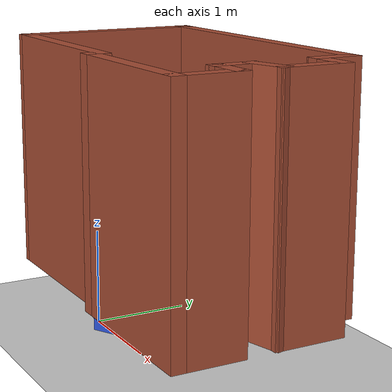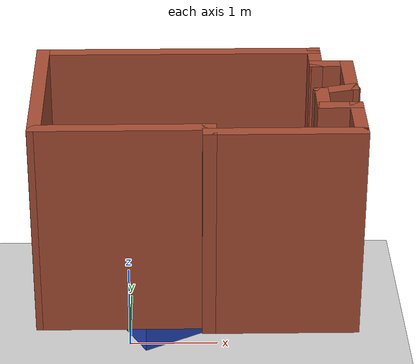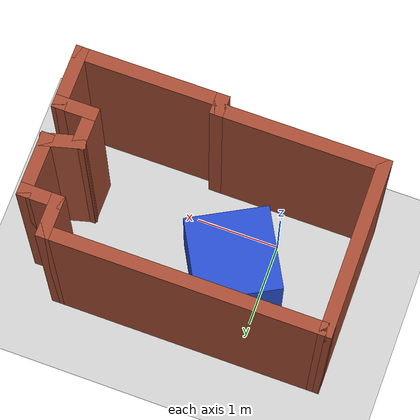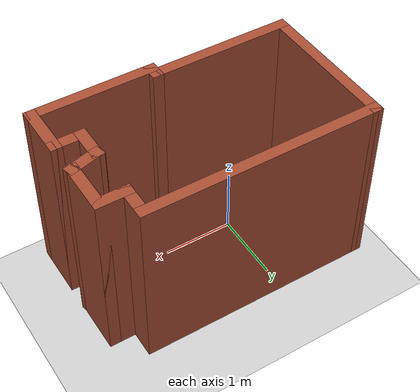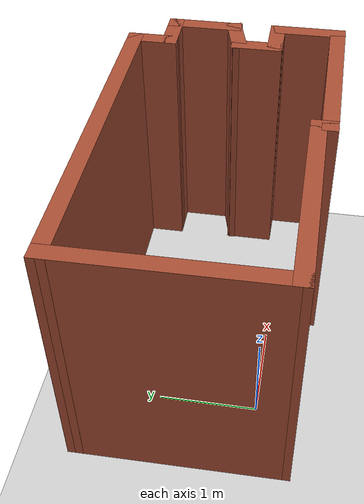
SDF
<sdf version="1.6">
 <world name="default">
  <light name="sun" type="directional">
   <pose>0 0 10 0 -0 0</pose>
   <diffuse>0.8 0.8 0.8 1</diffuse>
   <specular>0.2 0.2 0.2 1</specular>
   <attenuation>
    <range>1000</range>
    <constant>0.9</constant>
    <linear>0.01</linear>
    <quadratic>0.001</quadratic>
   </attenuation>
   <direction>-0.5 0.1 -0.9</direction>
  </light>
  <model name="ground_plane">
   <static>1</static>
   <link name="link">
    <collision name="collision">
     <geometry><plane><normal>0 0 1</normal><size>100 100</size></plane></geometry>
     <surface>
      <contact><collide_bitmask>65535</collide_bitmask></contact>
      <friction><ode><mu>100</mu><mu2>50</mu2></ode></friction>
     </surface>
    </collision>
    <visual name="visual">
     <cast_shadows>0</cast_shadows>
     <geometry><plane><normal>0 0 1</normal><size>100 100</size></plane></geometry>
     <material>
      <script><uri>file://media/materials/scripts/gazebo.material</uri><name>Gazebo/Grey</name></script>
     </material>
    </visual>
   </link>
  </model>
  <gravity>0 0 -9.8</gravity>
  <magnetic_field>6e-06 2.3e-05 -4.2e-05</magnetic_field>
  <atmosphere type="adiabatic"/>
  <physics name="default_physics" default="0" type="ode">
   <max_step_size>0.001</max_step_size>
   <real_time_factor>1</real_time_factor>
   <real_time_update_rate>1000</real_time_update_rate>
  </physics>
  <scene><ambient>0.4 0.4 0.4 1</ambient><background>0.7 0.7 0.7 1</background><shadows>1</shadows></scene>
  <audio><device>default</device></audio>
  <spherical_coordinates>
   <surface_model>EARTH_WGS84</surface_model>
   <latitude_deg>0</latitude_deg>
   <longitude_deg>0</longitude_deg>
   <elevation>0</elevation>
   <heading_deg>0</heading_deg>
  </spherical_coordinates>
  <model name="cocineta">
   <pose>0.760921 0.565073 0.474068 0 -0 0</pose>
   <link name="Wall_0">
    <collision name="Wall_0_Collision">
     <geometry><box><size>3.25 0.15 2.5</size></box></geometry>
     <pose>0 0 1.25 0 -0 0</pose>
    </collision>
    <visual name="Wall_0_Visual">
     <pose>0 0 1.25 0 -0 0</pose>
     <geometry><box><size>3.25 0.15 2.5</size></box></geometry>
     <material>
      <script><uri>file://media/materials/scripts/gazebo.material</uri><name>Gazebo/Bricks</name></script>
      <ambient>1 1 1 1</ambient>
     </material>
     <meta><layer>0</layer></meta>
    </visual>
    <pose>-0.183192 0.995057 0 0 -0 0</pose>
   </link>
   <link name="Wall_1">
    <collision name="Wall_1_Collision">
     <geometry><box><size>0.5 0.15 2.5</size></box></geometry>
     <pose>0 0 1.25 0 -0 0</pose>
    </collision>
    <visual name="Wall_1_Visual">
     <pose>0 0 1.25 0 -0 0</pose>
     <geometry><box><size>0.5 0.15 2.5</size></box></geometry>
     <material>
      <script><uri>file://media/materials/scripts/gazebo.material</uri><name>Gazebo/Bricks</name></script>
      <ambient>1 1 1 1</ambient>
     </material>
     <meta><layer>0</layer></meta>
    </visual>
    <pose>1.36681 0.820057 0 0 -0 -1.5708</pose>
   </link>
   <link name="Wall_10">
    <collision name="Wall_10_Collision">
     <geometry><box><size>2 0.15 2.5</size></box></geometry>
     <pose>0 0 1.25 0 -0 0</pose>
    </collision>
    <visual name="Wall_10_Visual">
     <pose>0 0 1.25 0 -0 0</pose>
     <geometry><box><size>2 0.15 2.5</size></box></geometry>
     <material>
      <script><uri>file://media/materials/scripts/gazebo.material</uri><name>Gazebo/Bricks</name></script>
      <ambient>1 1 1 1</ambient>
     </material>
     <meta><layer>0</layer></meta>
    </visual>
    <pose>-0.796266 -0.895529 0 0 -0 3.14159</pose>
   </link>
   <link name="Wall_11">
    <collision name="Wall_11_Collision">
     <geometry><box><size>2.04062 0.15 2.5</size></box></geometry>
     <pose>0 0 1.25 0 -0 0</pose>
    </collision>
    <visual name="Wall_11_Visual">
     <pose>0 0 1.25 0 -0 0</pose>
     <geometry><box><size>2.04062 0.15 2.5</size></box></geometry>
     <material>
      <script><uri>file://media/materials/scripts/gazebo.material</uri><name>Gazebo/Bricks</name></script>
      <ambient>1 1 1 1</ambient>
     </material>
     <meta><layer>0</layer></meta>
    </visual>
    <pose>-1.72723 0.049764 0 0 -0 1.5771</pose>
   </link>
   <link name="Wall_12">
    <collision name="Wall_12_Collision">
     <geometry><box><size>0.15 0.15 2.5</size></box></geometry>
     <pose>0 0 1.25 0 -0 0</pose>
    </collision>
    <visual name="Wall_12_Visual">
     <pose>0 0 1.25 0 -0 0</pose>
     <geometry><box><size>0.15 0.15 2.5</size></box></geometry>
     <material>
      <script><uri>file://media/materials/scripts/gazebo.material</uri><name>Gazebo/Bricks</name></script>
      <ambient>1 1 1 1</ambient>
     </material>
     <meta><layer>0</layer></meta>
    </visual>
    <pose>-1.73319 0.995057 0 0 -0 0</pose>
   </link>
   <link name="Wall_2">
    <collision name="Wall_2_Collision">
     <geometry><box><size>0.5 0.15 2.5</size></box></geometry>
     <pose>0 0 1.25 0 -0 0</pose>
    </collision>
    <visual name="Wall_2_Visual">
     <pose>0 0 1.25 0 -0 0</pose>
     <geometry><box><size>0.5 0.15 2.5</size></box></geometry>
     <material>
      <script><uri>file://media/materials/scripts/gazebo.material</uri><name>Gazebo/Bricks</name></script>
      <ambient>1 1 1 1</ambient>
     </material>
     <meta><layer>0</layer></meta>
    </visual>
    <pose>1.54181 0.645057 0 0 -0 0</pose>
   </link>
   <link name="Wall_3">
    <collision name="Wall_3_Collision">
     <geometry><box><size>0.75 0.15 2.5</size></box></geometry>
     <pose>0 0 1.25 0 -0 0</pose>
    </collision>
    <visual name="Wall_3_Visual">
     <pose>0 0 1.25 0 -0 0</pose>
     <geometry><box><size>0.75 0.15 2.5</size></box></geometry>
     <material>
      <script><uri>file://media/materials/scripts/gazebo.material</uri><name>Gazebo/Bricks</name></script>
      <ambient>1 1 1 1</ambient>
     </material>
     <meta><layer>0</layer></meta>
    </visual>
    <pose>1.71681 0.345057 0 0 -0 -1.5708</pose>
   </link>
   <link name="Wall_4">
    <collision name="Wall_4_Collision">
     <geometry><box><size>0.5 0.15 2.5</size></box></geometry>
     <pose>0 0 1.25 0 -0 0</pose>
    </collision>
    <visual name="Wall_4_Visual">
     <pose>0 0 1.25 0 -0 0</pose>
     <geometry><box><size>0.5 0.15 2.5</size></box></geometry>
     <material>
      <script><uri>file://media/materials/scripts/gazebo.material</uri><name>Gazebo/Bricks</name></script>
      <ambient>1 1 1 1</ambient>
     </material>
     <meta><layer>0</layer></meta>
    </visual>
    <pose>1.54777 -0.000236 0 0 -0 -2.87979</pose>
   </link>
   <link name="Wall_5">
    <collision name="Wall_5_Collision">
     <geometry><box><size>0.5 0.15 2.5</size></box></geometry>
     <pose>0 0 1.25 0 -0 0</pose>
    </collision>
    <visual name="Wall_5_Visual">
     <pose>0 0 1.25 0 -0 0</pose>
     <geometry><box><size>0.5 0.15 2.5</size></box></geometry>
     <material>
      <script><uri>file://media/materials/scripts/gazebo.material</uri><name>Gazebo/Bricks</name></script>
      <ambient>1 1 1 1</ambient>
     </material>
     <meta><layer>0</layer></meta>
    </visual>
    <pose>1.37873 -0.220529 0 0 -0 -1.5708</pose>
   </link>
   <link name="Wall_6">
    <collision name="Wall_6_Collision">
     <geometry><box><size>0.5 0.15 2.5</size></box></geometry>
     <pose>0 0 1.25 0 -0 0</pose>
    </collision>
    <visual name="Wall_6_Visual">
     <pose>0 0 1.25 0 -0 0</pose>
     <geometry><box><size>0.5 0.15 2.5</size></box></geometry>
     <material>
      <script><uri>file://media/materials/scripts/gazebo.material</uri><name>Gazebo/Bricks</name></script>
      <ambient>1 1 1 1</ambient>
     </material>
     <meta><layer>0</layer></meta>
    </visual>
    <pose>1.55373 -0.395529 0 0 -0 0</pose>
   </link>
   <link name="Wall_7">
    <collision name="Wall_7_Collision">
     <geometry><box><size>0.75 0.15 2.5</size></box></geometry>
     <pose>0 0 1.25 0 -0 0</pose>
    </collision>
    <visual name="Wall_7_Visual">
     <pose>0 0 1.25 0 -0 0</pose>
     <geometry><box><size>0.75 0.15 2.5</size></box></geometry>
     <material>
      <script><uri>file://media/materials/scripts/gazebo.material</uri><name>Gazebo/Bricks</name></script>
      <ambient>1 1 1 1</ambient>
     </material>
     <meta><layer>0</layer></meta>
    </visual>
    <pose>1.72873 -0.695529 0 0 -0 -1.5708</pose>
   </link>
   <link name="Wall_8">
    <collision name="Wall_8_Collision">
     <geometry><box><size>1.75 0.15 2.5</size></box></geometry>
     <pose>0 0 1.25 0 -0 0</pose>
    </collision>
    <visual name="Wall_8_Visual">
     <pose>0 0 1.25 0 -0 0</pose>
     <geometry><box><size>1.75 0.15 2.5</size></box></geometry>
     <material>
      <script><uri>file://media/materials/scripts/gazebo.material</uri><name>Gazebo/Bricks</name></script>
      <ambient>1 1 1 1</ambient>
     </material>
     <meta><layer>0</layer></meta>
    </visual>
    <pose>0.928734 -0.995529 0 0 -0 3.14159</pose>
   </link>
   <link name="Wall_9">
    <collision name="Wall_9_Collision">
     <geometry><box><size>0.25 0.15 2.5</size></box></geometry>
     <pose>0 0 1.25 0 -0 0</pose>
    </collision>
    <visual name="Wall_9_Visual">
     <pose>0 0 1.25 0 -0 0</pose>
     <geometry><box><size>0.25 0.15 2.5</size></box></geometry>
     <material>
      <script><uri>file://media/materials/scripts/gazebo.material</uri><name>Gazebo/Bricks</name></script>
      <ambient>1 1 1 1</ambient>
     </material>
     <meta><layer>0</layer></meta>
    </visual>
    <pose>0.128734 -0.945529 0 0 -0 1.5708</pose>
   </link>
   <static>1</static>
  </model>
  <model name="cubo_azul">
   <link name="link">
    <inertial>
     <mass>1</mass>
     <inertia>
      <ixx>0.166667</ixx>
      <ixy>0</ixy>
      <ixz>0</ixz>
      <iyy>0.166667</iyy>
      <iyz>0</iyz>
      <izz>0.166667</izz>
     </inertia>
    </inertial>
    <visual name="visual">
     <geometry><box><size>1 1 1</size></box></geometry>
     <material>
      <script><name>Gazebo/Blue</name><uri>file://media/materials/scripts/gazebo.material</uri></script>
      <shader type="vertex"><normal_map>__default__</normal_map></shader>
      <ambient>0 0 1 1</ambient>
      <diffuse>0 0 1 1</diffuse>
      <specular>0.1 0.1 0.1 1</specular>
      <emissive>0 0 0 1</emissive>
     </material>
    </visual>
    <collision name="collision">
     <geometry><box><size>1 1 1</size></box></geometry>
     <surface>
      <friction>
       <ode><mu>1</mu><mu2>1</mu2><fdir1>0 0 0</fdir1><slip1>0</slip1><slip2>0</slip2></ode>
       <torsional>
        <coefficient>1</coefficient>
        <patch_radius>0</patch_radius>
        <surface_radius>0</surface_radius>
        <use_patch_radius>1</use_patch_radius>
        <ode><slip>0</slip></ode>
       </torsional>
      </friction>
      <bounce><restitution_coefficient>0</restitution_coefficient><threshold>1e+06</threshold></bounce>
      <contact>
       <collide_without_contact>0</collide_without_contact>
       <collide_without_contact_bitmask>1</collide_without_contact_bitmask>
       <collide_bitmask>1</collide_bitmask>
       <ode>
        <soft_cfm>0</soft_cfm>
        <soft_erp>0.2</soft_erp>
        <kp>1e+13</kp>
        <kd>1</kd>
        <max_vel>0.01</max_vel>
        <min_depth>0</min_depth>
       </ode>
       <bullet>
        <split_impulse>1</split_impulse>
        <split_impulse_penetration_threshold>-0.01</split_impulse_penetration_threshold>
        <soft_cfm>0</soft_cfm>
        <soft_erp>0.2</soft_erp>
        <kp>1e+13</kp>
        <kd>1</kd>
       </bullet>
      </contact>
     </surface>
    </collision>
   </link>
   <static>0</static>
   <pose>0.381628 0.539706 0.5 0 -0 0.500479</pose>
  </model>
 </world>
</sdf>
